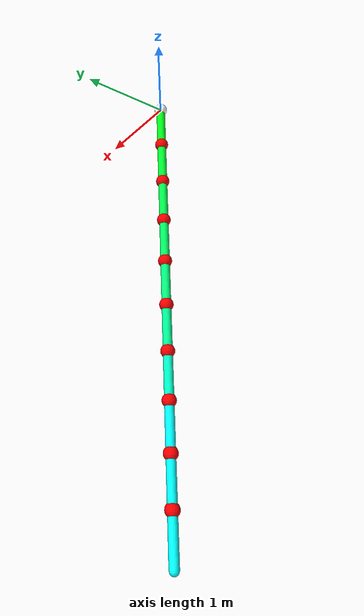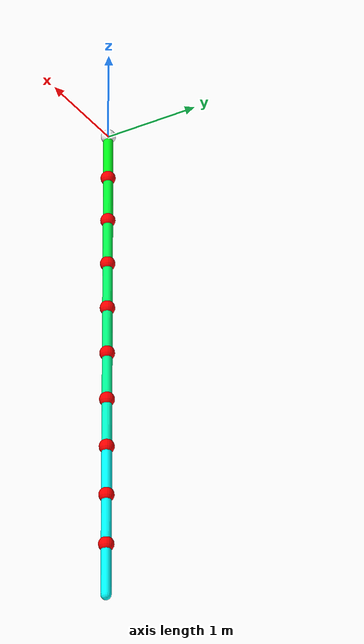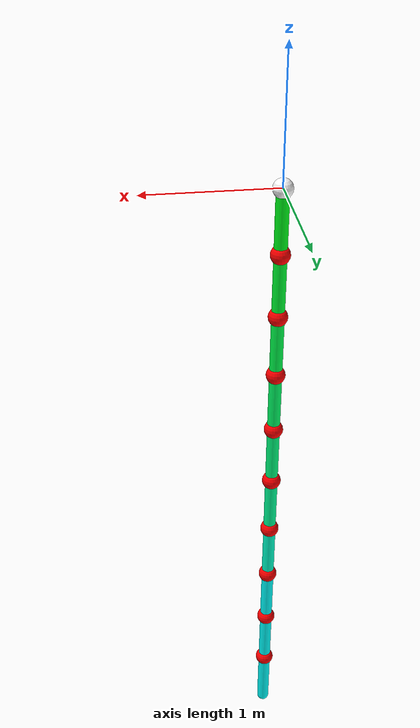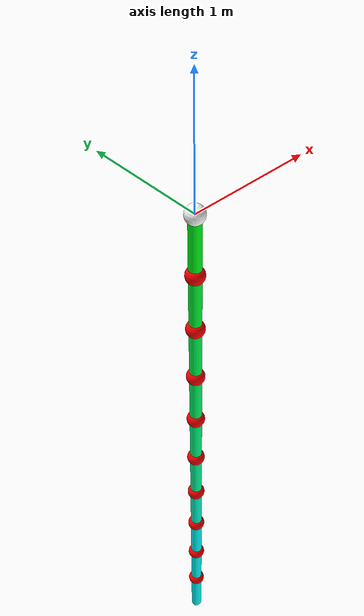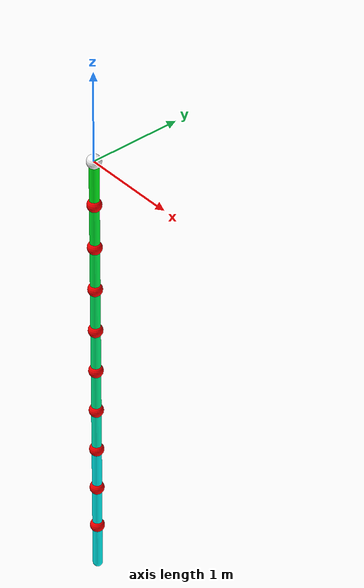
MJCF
<mujoco model="8_link_arm">
  <compiler angle="radian" coordinate="local" inertiafromgeom="true"/>
  <option collision="predefined" density="4000" integrator="RK4" timestep="0.01" viscosity="0.1"/>
  <default>
    <geom conaffinity="1" condim="1" contype="1" material="geom" rgba="0.8 0.6 .4 1"/>
    <joint armature='0.1'  />
  </default>
  <asset>
    <texture builtin="gradient" height="100" rgb1="1 1 1" rgb2="0 0 0" type="skybox" width="100"/>
    <texture builtin="flat" height="1278" mark="cross" markrgb="1 1 1" name="texgeom" random="0.01" rgb1="0.8 0.6 0.4" rgb2="0.8 0.6 0.4" type="cube" width="127"/>
    <material name="geom" texture="texgeom" texuniform="true"/>
  </asset>
  <worldbody>
    <light cutoff="100" diffuse="1 1 1" dir="-0 0 -1.3" directional="true" exponent="1" pos="1.1 0 1.3" specular=".1 .1 .1"/>
    <camera name="topcam" pos="0 0 2.5" zaxis="0 0 1" />
    <body name="body1" pos="0 0 0">
      <geom density="1" size="0.075" type="sphere" rgba="1 1 1 1"/>
      <geom density="1000" fromto="0 0 0.0 0 0 -0.5" size="0.05" type="capsule" rgba="0 1 0.1 1"/>
      <joint axis="0 1 0" name="motor1_rot" type="hinge"/>
      <body name="body2" pos="0 0 -0.5">
        <geom density="1" size="0.075" type="sphere" rgba="1 0 0 1"/>
        <geom density="1000" fromto="0 0 -0 0 0 -0.5" size="0.05" type="capsule" rgba="0 1 0.2 1"/>
        <joint axis="0 1 0" name="motor2_rot" type="hinge"/>
        <body name="body3" pos = "0 0 -0.5">
          <geom density="1" size="0.075" type="sphere" rgba="1 0 0 1"/>
          <geom density="1000" fromto="0 0 0.0 0 0 -0.5" size="0.05" type="capsule" rgba="0 1 0.3 1"/>
          <joint axis="0 1 0" name="motor3_rot" type="hinge"/>
          <body name="body4" pos = "0 0 -0.5">
            <geom density="1" size="0.075" type="sphere" rgba="1 0 0 1"/>
            <geom density="1000" fromto="0 0 0.0 0 0 -0.5" size="0.05" type="capsule" rgba="0 1 0.4 1"/>
            <joint axis="0 1 0" name="motor4_rot" type="hinge"/>
            <body name="body5" pos="0 0 -0.5">
              <geom density="1" size="0.075" type="sphere" rgba="1 0 0 1"/>
              <geom density="1000" fromto="0 0 0.0 0 0 -0.5" size="0.05" type="capsule" rgba="0 1 0.5 1"/>
              <joint axis="0 1 0" name="motor5_rot" type="hinge"/>
              <body name="body6" pos="0 0 -0.5">
                <geom density="1" size="0.075" type="sphere" rgba="1 0 0 1"/>
                <geom density="1000" fromto="0 0 -0 0 0 -0.5" size="0.05" type="capsule" rgba="0 1 0.6 1"/>
                <joint axis="0 1 0" name="motor6_rot" type="hinge"/>
                <body name="body7" pos = "0 0 -0.5">
                  <geom density="1" size="0.075" type="sphere" rgba="1 0 0 1"/>
                  <geom density="1000" fromto="0 0 0.0 0 0 -0.5" size="0.05" type="capsule" rgba="0 1 0.8 1"/>
                  <joint axis="0 1 0" name="motor7_rot" type="hinge"/>
                  <body name="body8" pos = "0 0 -0.5">
                    <geom density="1" size="0.075" type="sphere" rgba="1 0 0 1"/>
                    <geom density="1000" fromto="0 0 0.0 0 0 -0.5" size="0.05" type="capsule" rgba="0 1 1 1"/>
                    <joint axis="0 1 0" name="motor8_rot" type="hinge"/>
                    <body name="body9" pos = "0 0 -0.5">
                        <geom density="1" size="0.075" type="sphere" rgba="1 0 0 1"/>
                        <geom density="1000" fromto="0 0 0.0 0 0 -0.5" size="0.05" type="capsule" rgba="0 1 1 1"/>
                        <joint axis="0 1 0" name="motor9_rot" type="hinge"/>
                        <body name="body10" pos = "0 0 -0.5">
                            <geom density="1" size="0.075" type="sphere" rgba="1 0 0 1"/>
                            <geom density="1000" fromto="0 0 0.0 0 0 -0.5" size="0.05" type="capsule" rgba="0 1 1 1"/>
                            <joint axis="0 1 0" name="motor10_rot" type="hinge"/>
                        </body>
                    </body>
                  </body>
                </body>
              </body>
            </body>
          </body>
        </body>
      </body>
    </body>
  </worldbody>
  <actuator>
    <motor ctrllimited="true" ctrlrange="-1 1" gear="150.0" joint="motor1_rot"/>
    <motor ctrllimited="true" ctrlrange="-1 1" gear="150.0" joint="motor2_rot"/>
    <motor ctrllimited="true" ctrlrange="-1 1" gear="150.0" joint="motor3_rot"/>
    <motor ctrllimited="true" ctrlrange="-1 1" gear="150.0" joint="motor4_rot"/>
    <motor ctrllimited="true" ctrlrange="-1 1" gear="150.0" joint="motor5_rot"/>
    <motor ctrllimited="true" ctrlrange="-1 1" gear="150.0" joint="motor6_rot"/>
    <motor ctrllimited="true" ctrlrange="-1 1" gear="150.0" joint="motor7_rot"/>
    <motor ctrllimited="true" ctrlrange="-1 1" gear="150.0" joint="motor8_rot"/>
    <motor ctrllimited="true" ctrlrange="-1 1" gear="150.0" joint="motor9_rot"/>
    <motor ctrllimited="true" ctrlrange="-1 1" gear="150.0" joint="motor10_rot"/>
  </actuator>
  <sensor>
    <jointpos name="motor1_position_sensor" joint="motor1_rot"/>
    <jointpos name="motor2_position_sensor" joint="motor2_rot"/>
    <jointpos name="motor3_position_sensor" joint="motor3_rot"/>
    <jointpos name="motor4_position_sensor" joint="motor4_rot"/>
    <jointpos name="motor5_position_sensor" joint="motor5_rot"/>
    <jointpos name="motor6_position_sensor" joint="motor6_rot"/>
    <jointpos name="motor7_position_sensor" joint="motor7_rot"/>
    <jointpos name="motor8_position_sensor" joint="motor8_rot"/>
    <jointpos name="motor9_position_sensor" joint="motor9_rot"/>
    <jointpos name="motor10_position_sensor" joint="motor10_rot"/>
    <jointvel name="motor1_velocity_sensor" joint="motor1_rot"/>
    <jointvel name="motor2_velocity_sensor" joint="motor2_rot"/>
    <jointvel name="motor3_velocity_sensor" joint="motor3_rot"/>
    <jointvel name="motor4_velocity_sensor" joint="motor4_rot"/>
    <jointvel name="motor5_velocity_sensor" joint="motor5_rot"/>
    <jointvel name="motor6_velocity_sensor" joint="motor6_rot"/>
    <jointvel name="motor7_velocity_sensor" joint="motor7_rot"/>
    <jointvel name="motor8_velocity_sensor" joint="motor8_rot"/>
    <jointvel name="motor9_velocity_sensor" joint="motor9_rot"/>
    <jointvel name="motor10_velocity_sensor" joint="motor10_rot"/>
  </sensor>
</mujoco>
